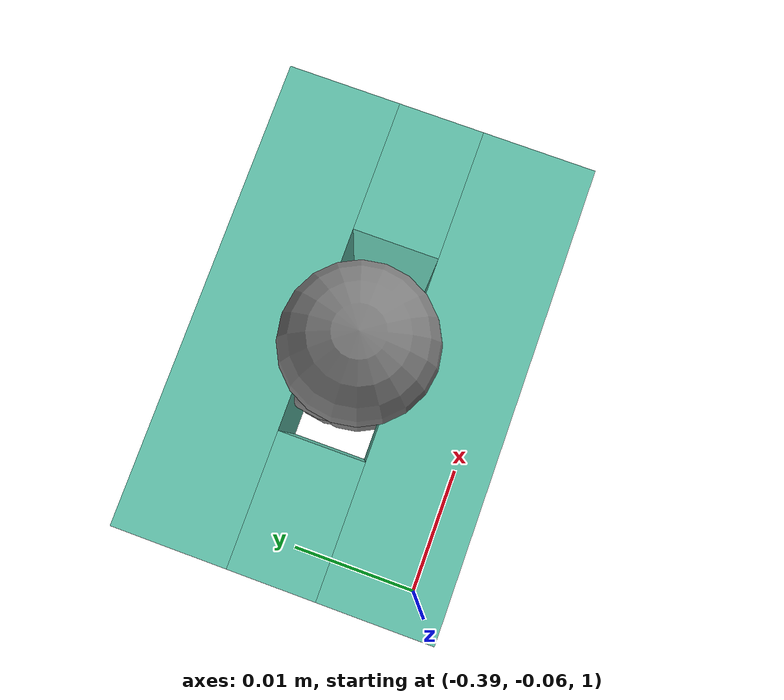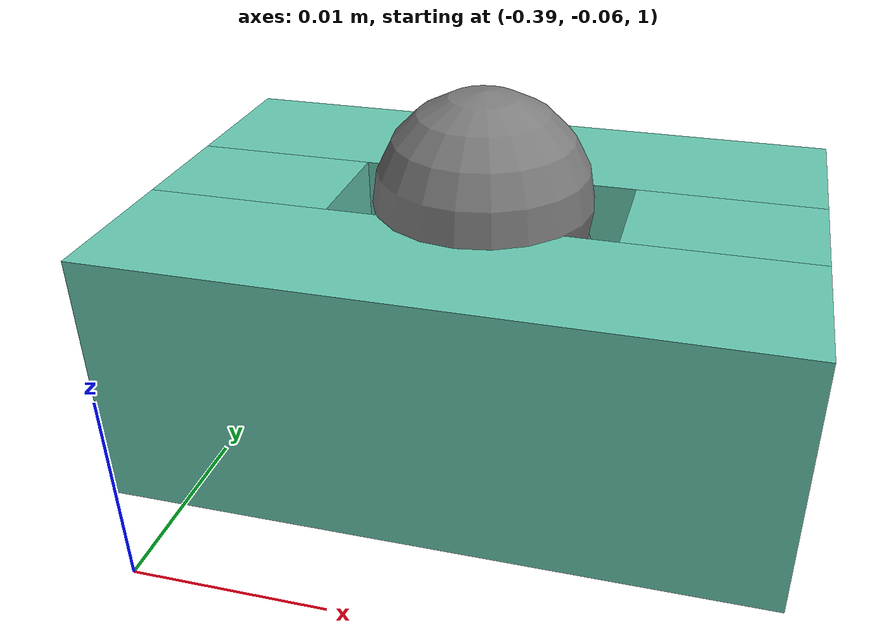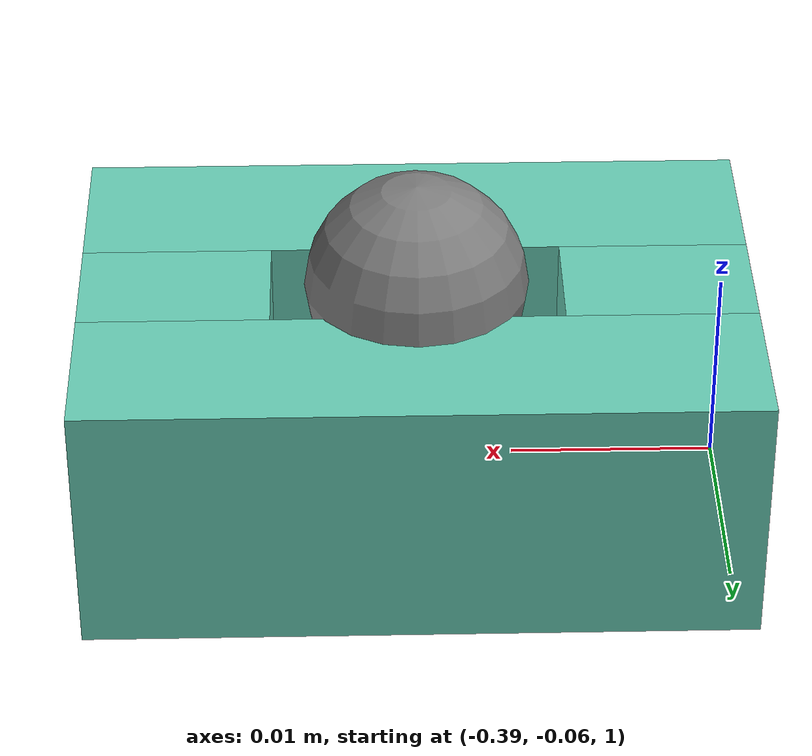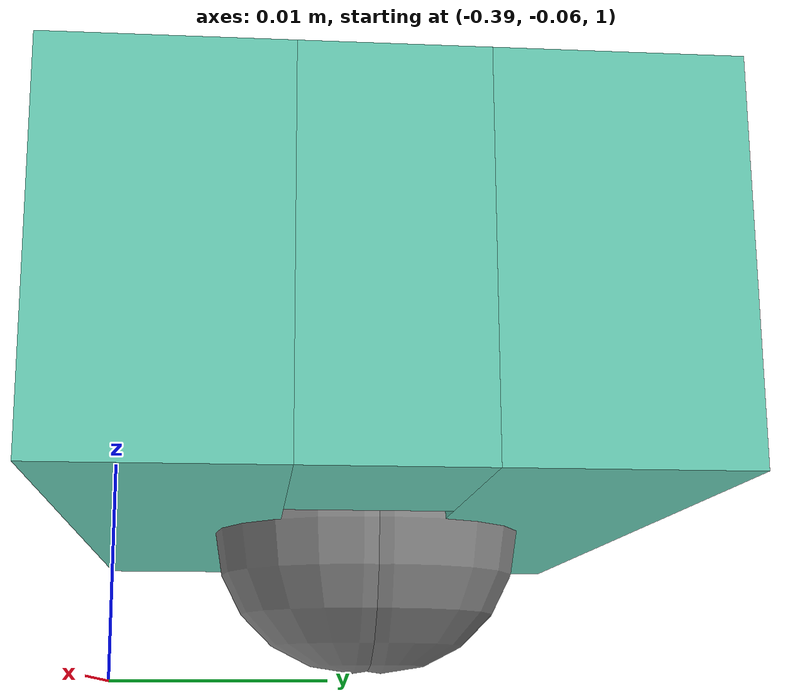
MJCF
<mujoco model="curved_hole">

    <asset>
        <mesh name="hole01" file="hole01.STL" scale="0.001 0.001 0.001" />
        <mesh name="hole02" file="hole02.STL" scale="0.001 0.001 0.001" />
        <mesh name="hole031" file="hole03_1.STL" scale="0.001 0.001 0.001" />
        <mesh name="hole032" file="hole03_2c_8mm.STL" scale="0.001 0.001 0.001" />
        <mesh name="hole033" file="hole03_3.STL" scale="0.001 0.001 0.001" />

    </asset>

    <worldbody>

        <camera mode="trackcom" target="box" pos="0.01 0.25 1.99" axisangle="0 0.5 1.4 3.1415927" />

        <body mocap="true" name="box" pos="-0.375 -0.05  1.005" quat="1 0 0 0">

            <body name="hole_object">
                <body name="object1">
                <geom pos="0 0 0" type="mesh" mesh="hole01" rgba="0.4033894854235578 0.8004930352940468 0.7055707752596116 1.0" />
                <body name="object2">
                <geom pos="0 0 0" type="mesh" mesh="hole02" rgba="0.4033894854235578 0.8004930352940468 0.7055707752596116 1.0" />
                <body name="object3">
                <geom pos="0 0 0" type="mesh" mesh="hole031" rgba="0.4033894854235578 0.8004930352940468 0.7055707752596116 1.0" />
                <body name="object4">
                <geom pos="0 0 0" type="mesh" mesh="hole032" rgba="0.4033894854235578 0.8004930352940468 0.7055707752596116 1.0" />
                <body name="object5">
                <geom pos="0 0 0" type="mesh" mesh="hole033" rgba="0.4033894854235578 0.8004930352940468 0.7055707752596116 1.0" />
                <site name="hole_top" pos="0 0 0.012" type="sphere" size=".005 .005 .005" />
                <site name="hole_center_top" pos="0 0.001 0.008" type="sphere" size=".005 .005 .005" />
                <site name="hole_center_bottom" pos="0 0.001 0" type="sphere" size=".005 .005 .005" />
                <site name="hole_bottom" pos="0 0 0" type="sphere" size=".005 .005 .005" />
                </body>
                </body>
                </body>
                </body>
                </body>
            </body>
        </body>
    </worldbody>
</mujoco>
